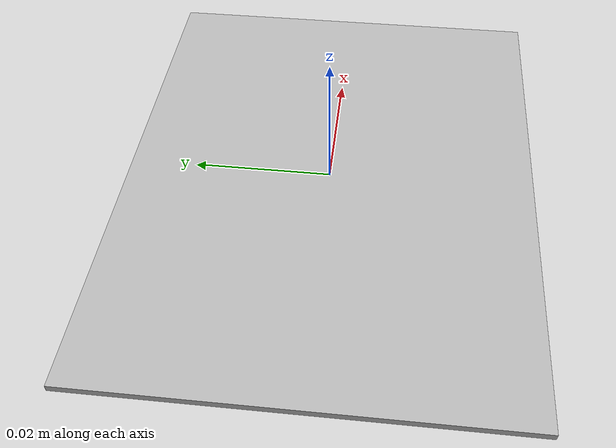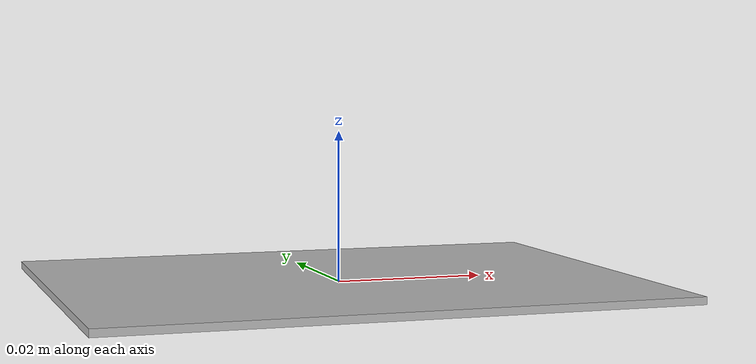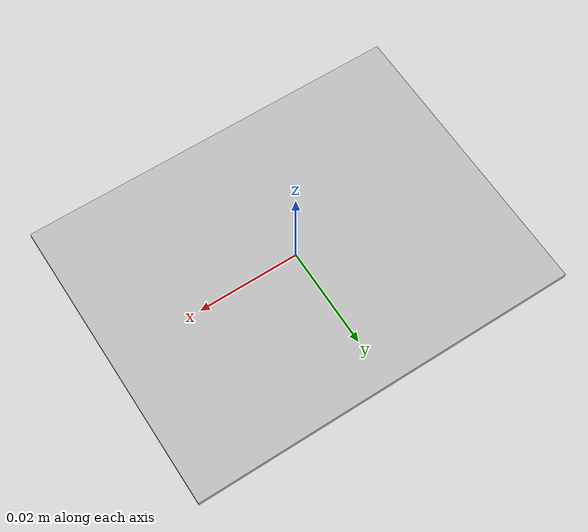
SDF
<?xml version='1.0'?>
<sdf version='1.4'>
    <model name="TEMPLATE">
        <static>true</static>
        <link name='link'>

            <collision name ='collision'>
                <geometry>
                    <box>
                        <size>0.0763 0.05912 .001</size>
                    </box>
                </geometry>
            </collision>
            <visual name='visual'>
                <geometry>
                    <box>
                        <size>0.0763 0.05912 .001</size>
                    </box>
                </geometry>

                <material>
                    <script>
                        <uri>model://TEMPLATE/materials/scripts</uri>
                        <uri>model://TEMPLATE/materials/textures</uri>
                        <name>TEMPLATE/Diffuse</name>
                    </script>
                </material>
            </visual>
        </link>
    </model>
</sdf>
